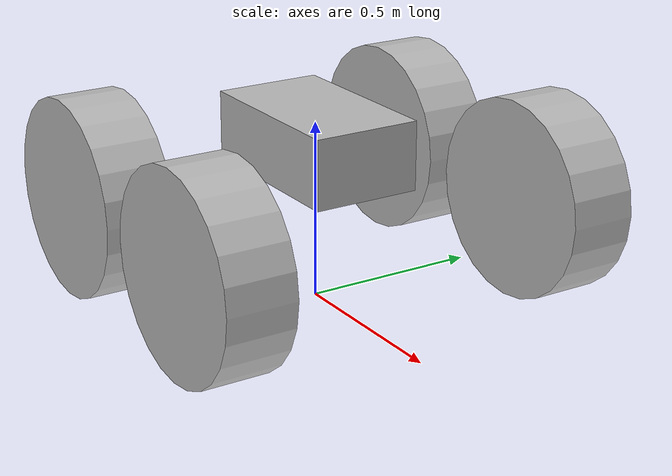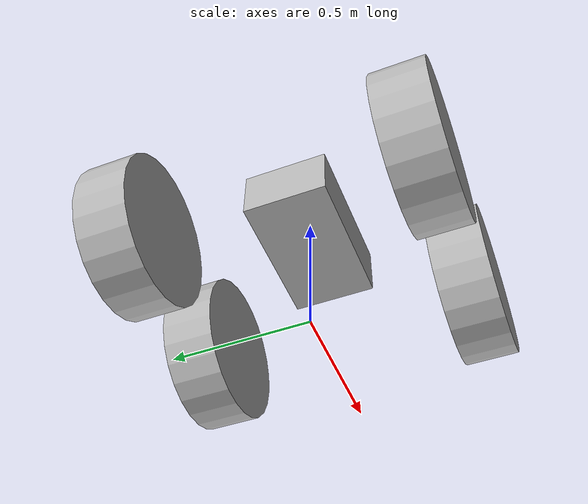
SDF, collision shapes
<?xml version="1.0" encoding="utf-8"?>

<sdf version="1.7">

    <model name="pioneer3at">

        <pose>0 0 0.45 0 0 0</pose>
        <static>false</static>

        <!-- CHASSIS -->

        <link name="chassis">

            <inertial>

                <mass>14.0</mass>

                <inertia>
                    <ixx>0.147116667</ixx>
                    <ixy>0.0</ixy>
                    <ixz>0.0</ixz>

                    <iyy>0.334951167</iyy>
                    <iyz>0.0</iyz>

                    <izz>0.3978345</izz>
                </inertia>

            </inertial>

            <!-- Chassis collision -->

            <collision name="collision">

                <geometry>

                    <box>
                        <size>0.501 0.300 0.19</size>
                    </box>

                </geometry>

            </collision>

            <!-- Chassis visual -->

            <visual name="visual">

                <geometry>

                    <mesh>

                        <uri>
                            https://fuel.gazebosim.org/1.0/openrobotics/models/pioneer%203at/3/files/meshes/chassis.dae
                        </uri>

                        <scale>2.5 2.5 2.5</scale>

                    </mesh>

                </geometry>

            </visual>

            <!-- SENSOR 1 : 360 DEGREE 2D LIDAR -->

            <sensor name="lidar" type="gpu_lidar">

                <!-- Mounted on top of robot -->
                <pose>0 0 0.75 0 0 0</pose>

                <always_on>true</always_on>

                <!-- 10 scans per second -->
                <update_rate>10</update_rate>

                <!-- Show laser rays in Gazebo -->
                <visualize>true</visualize>

                <lidar>

                    <scan>

                        <horizontal>

                            <!-- 720 rays -->
                            <samples>720</samples>

                            <resolution>1</resolution>

                            <!-- -180 degrees -->
                            <min_angle>-3.14159265</min_angle>

                            <!-- +180 degrees -->
                            <max_angle>3.14159265</max_angle>

                        </horizontal>

                    </scan>

                    <range>

                        <!-- Minimum LiDAR range -->
                        <min>0.15</min>

                        <!-- Maximum LiDAR range -->
                        <max>20.0</max>

                        <resolution>0.01</resolution>

                    </range>

                </lidar>

            </sensor>

            <!-- SENSOR 2 : RGB CAMERA -->

            <sensor name="rgb_camera" type="camera">

                <!--
                    Camera is mounted toward the front of robot.

                    +X is the forward direction of Pioneer.
                -->

                <pose>0.45 0 0.60 0 0 0</pose>

                <always_on>true</always_on>

                <!-- 20 frames per second -->
                <update_rate>20</update_rate>

                <visualize>true</visualize>

                <camera>

                    <!-- Approximately 80 degree horizontal FOV -->

                    <horizontal_fov>
                        1.3962634
                    </horizontal_fov>

                    <image>

                        <width>640</width>

                        <height>480</height>

                        <format>R8G8B8</format>

                    </image>

                    <clip>

                        <near>0.10</near>

                        <far>30.0</far>

                    </clip>

                </camera>

            </sensor>

            <!-- SENSOR 3 : IMU -->

            <sensor name="imu" type="imu">

                <!-- IMU near robot centre -->

                <pose>0 0 0.35 0 0 0</pose>

                <always_on>true</always_on>

                <!-- 50 measurements per second -->

                <update_rate>50</update_rate>

            </sensor>

        </link>

        <!-- RIGHT FRONT WHEEL -->

        <link name="right_front_wheel">

            <pose>
                0.3125 -0.5025 -0.15 1.5707 0 0
            </pose>

            <inertial>

                <mass>1.5</mass>

                <inertia>

                    <ixx>0.005240625</ixx>
                    <iyy>0.005240625</iyy>
                    <izz>0.009075</izz>

                    <ixy>0</ixy>
                    <ixz>0</ixz>
                    <iyz>0</iyz>

                </inertia>

            </inertial>

            <collision name="collision">

                <geometry>

                    <cylinder>

                        <radius>0.275</radius>

                        <length>0.1875</length>

                    </cylinder>

                </geometry>

                <surface>

                    <friction>

                        <ode>

                            <mu>1</mu>

                            <mu2>1</mu2>

                            <slip1>0.5</slip1>

                            <slip2>0</slip2>

                        </ode>

                    </friction>

                </surface>

            </collision>

            <visual name="visual">

                <geometry>

                    <mesh>

                        <uri>
                            https://fuel.gazebosim.org/1.0/openrobotics/models/pioneer%203at/3/files/meshes/wheel.dae
                        </uri>

                        <scale>2.5 2.5 2.5</scale>

                    </mesh>

                </geometry>

            </visual>

        </link>

        <!-- LEFT FRONT WHEEL -->

        <link name="left_front_wheel">

            <pose>
                0.3125 0.5025 -0.15 1.5707 0 0
            </pose>

            <inertial>

                <mass>1.5</mass>

                <inertia>

                    <ixx>0.005240625</ixx>
                    <iyy>0.005240625</iyy>
                    <izz>0.009075</izz>

                    <ixy>0</ixy>
                    <ixz>0</ixz>
                    <iyz>0</iyz>

                </inertia>

            </inertial>

            <collision name="collision">

                <geometry>

                    <cylinder>

                        <radius>0.275</radius>

                        <length>0.1875</length>

                    </cylinder>

                </geometry>

                <surface>

                    <friction>

                        <ode>

                            <mu>1</mu>

                            <mu2>1</mu2>

                            <slip1>0.5</slip1>

                            <slip2>0</slip2>

                        </ode>

                    </friction>

                </surface>

            </collision>

            <visual name="visual">

                <geometry>

                    <mesh>

                        <uri>
                            https://fuel.gazebosim.org/1.0/openrobotics/models/pioneer%203at/3/files/meshes/wheel.dae
                        </uri>

                        <scale>2.5 2.5 2.5</scale>

                    </mesh>

                </geometry>

            </visual>

        </link>

        <!-- RIGHT REAR WHEEL -->

        <link name="right_rear_wheel">

            <pose>
                -0.3125 -0.5025 -0.15 1.5707 0 0
            </pose>

            <inertial>

                <mass>1.5</mass>

                <inertia>

                    <ixx>0.005240625</ixx>
                    <iyy>0.005240625</iyy>
                    <izz>0.009075</izz>

                    <ixy>0</ixy>
                    <ixz>0</ixz>
                    <iyz>0</iyz>

                </inertia>

            </inertial>

            <collision name="collision">

                <geometry>

                    <cylinder>

                        <radius>0.275</radius>

                        <length>0.1875</length>

                    </cylinder>

                </geometry>

                <surface>

                    <friction>

                        <ode>

                            <mu>1</mu>

                            <mu2>1</mu2>

                            <slip1>0.5</slip1>

                            <slip2>0</slip2>

                        </ode>

                    </friction>

                </surface>

            </collision>

            <visual name="visual">

                <geometry>

                    <mesh>

                        <uri>
                            https://fuel.gazebosim.org/1.0/openrobotics/models/pioneer%203at/3/files/meshes/wheel.dae
                        </uri>

                        <scale>2.5 2.5 2.5</scale>

                    </mesh>

                </geometry>

            </visual>

        </link>

        <!-- LEFT REAR WHEEL -->

        <link name="left_rear_wheel">

            <pose>
                -0.3125 0.5025 -0.15 1.5707 0 0
            </pose>

            <inertial>

                <mass>1.5</mass>

                <inertia>

                    <ixx>0.005240625</ixx>
                    <iyy>0.005240625</iyy>
                    <izz>0.009075</izz>

                    <ixy>0</ixy>
                    <ixz>0</ixz>
                    <iyz>0</iyz>

                </inertia>

            </inertial>

            <collision name="collision">

                <geometry>

                    <cylinder>

                        <radius>0.275</radius>

                        <length>0.1875</length>

                    </cylinder>

                </geometry>

                <surface>

                    <friction>

                        <ode>

                            <mu>1</mu>

                            <mu2>1</mu2>

                            <slip1>0.5</slip1>

                            <slip2>0</slip2>

                        </ode>

                    </friction>

                </surface>

            </collision>

            <visual name="visual">

                <geometry>

                    <mesh>

                        <uri>
                            https://fuel.gazebosim.org/1.0/openrobotics/models/pioneer%203at/3/files/meshes/wheel.dae
                        </uri>

                        <scale>2.5 2.5 2.5</scale>

                    </mesh>

                </geometry>

            </visual>

        </link>

        <!-- RIGHT FRONT WHEEL JOINT -->

        <joint type="revolute" name="right_front">

            <pose>0 0 0 0 0 0</pose>

            <child>right_front_wheel</child>

            <parent>chassis</parent>

            <axis>

                <xyz>0 1 0</xyz>

            </axis>

        </joint>

        <!-- RIGHT REAR WHEEL JOINT -->

        <joint type="revolute" name="right_rear">

            <pose>0 0 0 0 0 0</pose>

            <child>right_rear_wheel</child>

            <parent>chassis</parent>

            <axis>

                <xyz>0 1 0</xyz>

            </axis>

        </joint>

        <!-- LEFT FRONT WHEEL JOINT -->

        <joint type="revolute" name="left_front">

            <pose>0 0 0 0 0 0</pose>

            <child>left_front_wheel</child>

            <parent>chassis</parent>

            <axis>

                <xyz>0 1 0</xyz>

            </axis>

        </joint>

        <!-- LEFT REAR WHEEL JOINT -->

        <joint type="revolute" name="left_rear">

            <pose>0 0 0 0 0 0</pose>

            <child>left_rear_wheel</child>

            <parent>chassis</parent>

            <axis>

                <xyz>0 1 0</xyz>

            </axis>

        </joint>

        <!-- DIFFERENTIAL DRIVE -->
        <!-- WHEEL-BASED ODOMETRY -->

        <plugin
            filename="gz-sim-diff-drive-system"
            name="gz::sim::systems::DiffDrive">

            <!-- Left wheel joints -->

            <left_joint>
                left_front
            </left_joint>

            <left_joint>
                left_rear
            </left_joint>

            <!-- Right wheel joints -->

            <right_joint>
                right_front
            </right_joint>

            <right_joint>
                right_rear
            </right_joint>

            <!--
                Scaled Pioneer dimensions.
                Robot was enlarged 2.5x.
            -->

            <wheel_separation>
                0.9525
            </wheel_separation>

            <wheel_radius>
                0.2775
            </wheel_radius>

            <!-- Publish wheel odometry at 30 Hz -->

            <odom_publish_frequency>
                30
            </odom_publish_frequency>

        </plugin>

        <!-- WHEEL ENCODER / JOINT STATE PUBLISHER -->

        <plugin
            filename="gz-sim-joint-state-publisher-system"
            name="gz::sim::systems::JointStatePublisher">

            <!-- Left front wheel encoder -->
            <joint_name>
                left_front
            </joint_name>

            <!-- Left rear wheel encoder -->
            <joint_name>
                left_rear
            </joint_name>

            <!-- Right front wheel encoder -->
            <joint_name>
                right_front
            </joint_name>

            <!-- Right rear wheel encoder -->
            <joint_name>
                right_rear
            </joint_name>

        </plugin>

    </model>

</sdf>
